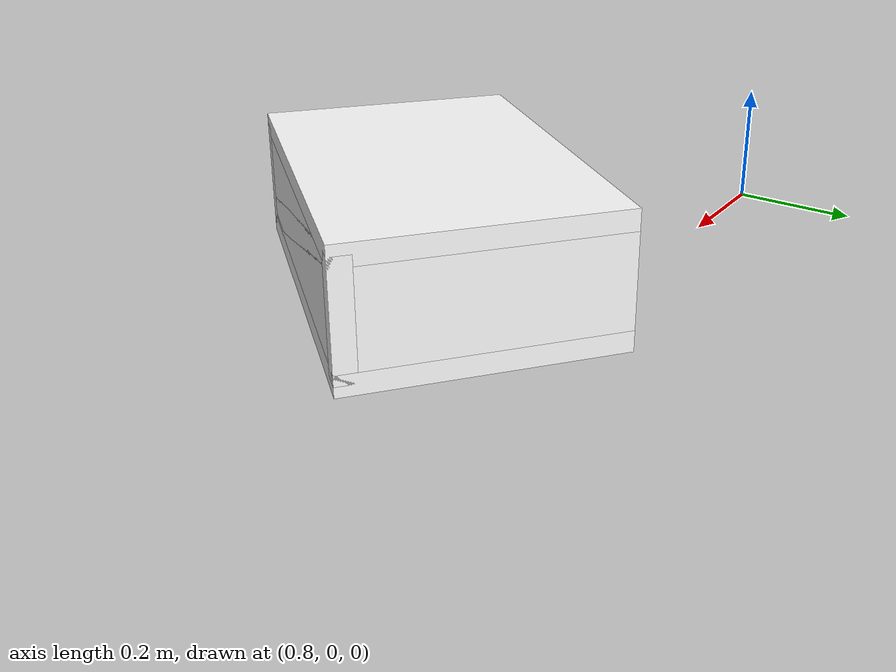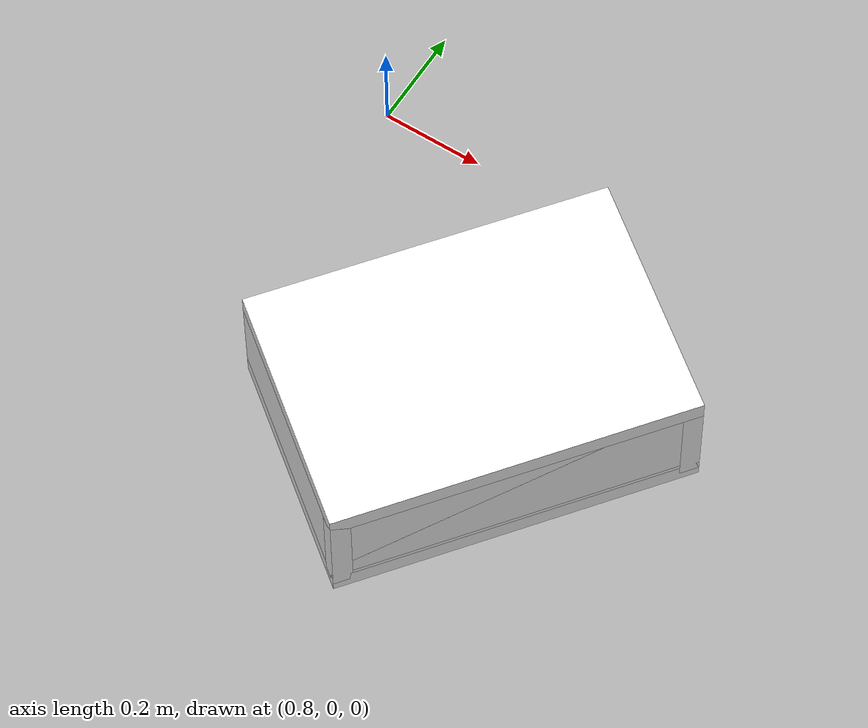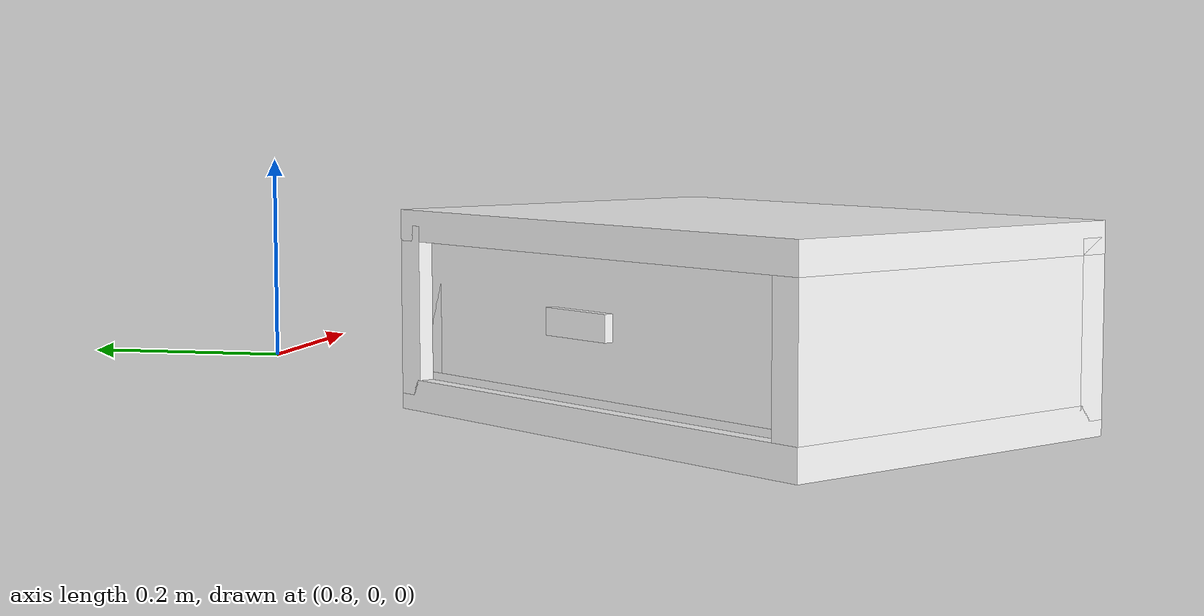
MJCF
<mujoco model="drawer">
        <compiler angle="radian" eulerseq='zxy' />
        <option gravity = "0 0 0" />
        <option>
            <flag contact = "disable"/>
        </option>
        <statistic	extent="1.0" center="0.0 0.0 0.0"/>
        <visual>
            <map fogstart="3" fogend="5" force="0.1" znear=" 0.100000 " zfar=" 12.000000 "/>
        </visual>
        <size njmax="500" nconmax="100" />
        <actuator>
            <velocity joint="drawerJ" name="viva_revolution" kv='10'></velocity>
        </actuator>
        <asset>
            <texture builtin="flat" name="objtex" height="32" width="32" rgb1="1 1 1" type="cube"></texture>
            <texture builtin="flat" name="handletex" height="32" width="32" rgb1="1 1 1" type="cube"></texture>
            <material name="geomObj" shininess="0.03" specular="0.75" texture="objtex"></material>
            <material name="geomHandle" shininess="0.03" specular="0.75" texture="handletex"></material>
        </asset>
        <worldbody>
            <body name="cabinet_bottom" pos= " 1.241396 -0.406451 -0.103371 "  quat= " 0.325402 0.000000 0.000000 0.945576" >
                <inertial pos="0 0 0" mass="1" diaginertia="1 1 1" />
                <geom size= " 0.241275 0.349408 0.019039 "  type="box" material="geomObj" name="b"/>
                <body name="cabinet_left" pos= " 0.000000 -0.330368 0.104176 " >
                    <inertial pos="0 0 0" mass="1" diaginertia="1 1 1" />
                    <geom size= " 0.241275 0.019039 0.104176 "  type="box" material="geomObj" name="c" />
                </body>
                <body name="cabinet_right" pos= " 0.000000 0.330368 0.104176 " >
                    <inertial pos="0 0 0" mass="1" diaginertia="1 1 1" />
                    <geom size= " 0.241275 0.019039 0.104176 "  type="box" material="geomObj" name="d" />
                </body>
                <body name="cabinet_top" pos= " 0.000000 0.000000 0.208352 " >
                    <inertial pos="0 0 0" mass="1" diaginertia="1 1 1" />
                    <geom size= " 0.241275 0.349408 0.019039 "  type="box" material="geomObj" name="e"/>
                </body>
                <body name="cabinet_back" pos= " -0.222235 0.000000 0.104176 "  >
                    <inertial pos="0 0 0" mass="1" diaginertia="1 1 1" />
                    <geom size= " 0.019039 0.349408 0.104176 "  type="box" material="geomObj" name="f" />
                </body>
                <body name="drawer" pos= " 0.000000 0.000000 0.009520 "  >
                    <geom size= " 0.222235 0.330368 0.019039 "  type="box" material="geomObj" name="ddddfadfadsfac" />
                    <joint name="drawerJ" pos="0 0 0" axis="1 0 0" type="slide" limited="true" range= "0  0.3619123175740242 "  />
                    <inertial pos="0 0 0" mass="1" diaginertia="1 1 1" />
                    <body name="drawer_left" pos= " 0.000000 -0.311329 0.104176 " >
                        <inertial pos="0 0 0" mass="1" diaginertia="1 1 1" />
                        <geom size= " 0.222235 0.019039 0.085137 "  type="box" material="geomObj" name="ddc" />
                    </body>
                    <body name="drawer_right" pos= " 0.000000 0.311329 0.104176 " >
                        <inertial pos="0 0 0" mass="1" diaginertia="1 1 1" />
                        <geom size= " 0.222235 0.019039 0.085137 "  type="box" material="geomObj" name="dddd" />
                    </body>
                    <body name="drawer_front" pos= " 0.203196 0.000000 0.104176 " >
                        <inertial pos="0 0 0" mass="1" diaginertia="1 1 1" />
                        <geom size= " 0.019039 0.330368 0.085137 "  type="box" material="geomObj" name="eeeee"/>
                    </body>
                    <body name="drawer_back" pos= " -0.222235 0.000000 0.104176 "  >
                        <inertial pos="0 0 0" mass="1" diaginertia="1 1 1" />
                        <geom size= " 0.019039 0.330368 0.085137 "  type="box" material="geomObj" name="fffff" />
                    </body>
                    <body name="knob" pos= " 0.241275 0.000000 0.104176 " >
                        <inertial pos="0 0 0" mass="0.1" diaginertia="0.1 0.1 0.1" />
                        <geom size= " 0.005725 0.052785 0.015843 "  pos="0 0 0" type="box" material="geomHandle" name="handle"/>
                    </body>
                </body>
            </body>
            <body name="external_camera_body_0" pos="0.0 0 0.00">
                <camera euler="-1.57 1.57 0.0" fovy=" 54.280851 " name="external_camera_0" pos="0.0 0 0"></camera>
                <inertial pos= " 0.00 0.0 0.000000 " mass="1" diaginertia="1 1 1" />
                <joint name="cam_j" pos="0.0 0 0" axis = "1 0 0" type="free" />
            </body>
        </worldbody>
    </mujoco>
